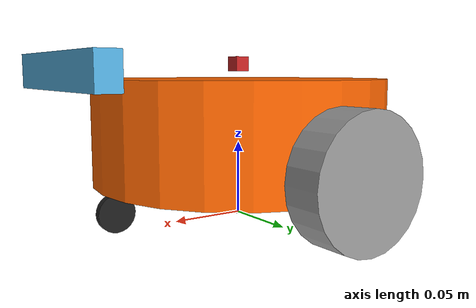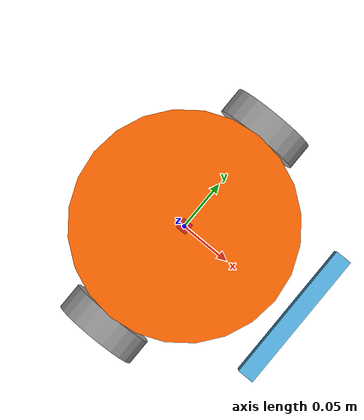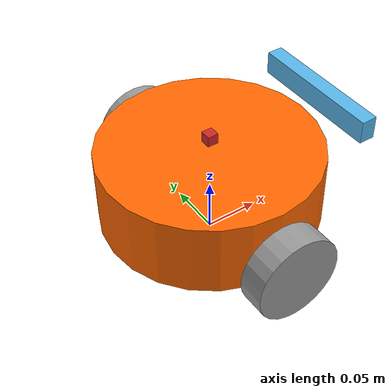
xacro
<?xml version="1.0"?>
<robot name="myrobot_diff_bot"
    xmlns:xacro="http://ros.org/wiki/xacro">

    <!-- PROPERTY LIST -->

    <!-- base_link的质量、半径、高度 -->
    <xacro:property name="base_mass"   value="1" />
    <xacro:property name="base_radius"  value="0.1"/>
    <xacro:property name="base_height" value="0.07"/>

    <!-- 万向轮半径、轮子宽度、x轴偏移 -->
    <xacro:property name="caster_mass"    value="0.2" />
    <xacro:property name="caster_radius"  value="0.012"/>
    <xacro:property name="caster_length"    value="0.005" />
    <xacro:property name="caster_joint_x" value="${base_radius-0.02}"/>

    <!-- 运动轮质量、半径、宽度、x轴偏移、z相对于base_link的偏移 -->
    <xacro:property name="wheel_mass"   value="0.2" />
    <xacro:property name="wheel_radius" value="0.04"/>
    <xacro:property name="wheel_length" value="0.025"/>
    <xacro:property name="wheel_joint_x" value="0.0"/>
    <xacro:property name="wheel_joint_z" value="${caster_radius*2+base_height/2-wheel_radius}"/>

    <!-- Defining the colors used in this robot -->
    <material name="yellow">
        <color rgba="1 0.4 0 1"/>
    </material>
    <material name="black">
        <color rgba="0 0 0 0.95"/>
    </material>
    <material name="gray">
        <color rgba="0.75 0.75 0.75 1"/>
    </material>

    <!-- Macro for inertia matrix -->
    <xacro:macro name="sphere_inertial_matrix" params="m r">
        <inertial>
            <mass value="${m}"/>
            <inertia ixx="${2*m*r*r/5}" ixy="0" ixz="0" iyy="${2*m*r*r/5}" iyz="0" izz="${2*m*r*r/5}"/>
        </inertial>
    </xacro:macro>

    <xacro:macro name="cylinder_inertial_matrix" params="m r h">
        <inertial>
            <mass value="${m}" />
            <inertia ixx="${m*(3*r*r+h*h)/12}" ixy = "0" ixz = "0" iyy="${m*(3*r*r+h*h)/12}" iyz = "0" izz="${m*r*r/2}" />
        </inertial>
    </xacro:macro>

    <xacro:macro name="box_inertial_matrix" params="m l w h">
        <inertial>
             <mass value="${m}" />
             <inertia ixx="${m*(h*h + l*l)/12}" ixy = "0" ixz = "0" iyy="${m*(w*w + l*l)/12}" iyz= "0" izz="${m*(w*w + h*h)/12}" />
        </inertial>
    </xacro:macro>

    <!-- Robot Footprint -->
    <link name="base_footprint">
        <xacro:box_inertial_matrix m="0" l="0" w="0" h="0"/>
    </link>

    <!-- Robot Base -->
    <link name="base_link">
        <visual>
            <origin xyz=" 0 0 0" rpy="0 0 0" />
            <geometry>
                <cylinder radius="${base_radius}" length = "${base_height}"/>
            </geometry>
            <material name="yellow" />
        </visual>
        <collision>
            <origin xyz=" 0 0 0" rpy="0 0 0" />
            <geometry>
                <cylinder radius="${base_radius}" length = "${base_height}"/>
            </geometry>
        </collision>
        <xacro:cylinder_inertial_matrix  m="${base_mass}" r="${base_radius}" h="${base_height}" />
    </link>

    <gazebo reference="base_link">
        <material>Gazebo/Yellow</material>
    </gazebo>

    <joint name="base_footprint_joint" type="fixed">
        <origin xyz="0 0 ${base_height/2 + caster_radius*2}" rpy="0 0 0" />
        <parent link="base_footprint"/>
        <child link="base_link" />
    </joint>

    <!-- 运动轮的宏 -->
    <xacro:macro name="wheel" params="prefix reflect">
        <link name="${prefix}_wheel_link">
            <visual>
                <origin xyz="0 0 0" rpy="${pi/2} 0 0" />
                <geometry>
                    <cylinder radius="${wheel_radius}" length = "${wheel_length}"/>
                </geometry>
            </visual>
            <collision>
                <origin xyz="0 0 0" rpy="${pi/2} 0 0" />
                <geometry>
                    <cylinder radius="${wheel_radius}" length = "${wheel_length}"/>
                </geometry>
            </collision>
            <xacro:cylinder_inertial_matrix  m="${wheel_mass}" r="${wheel_radius}" h="${wheel_length}" />
        </link>

        <gazebo reference="${prefix}_wheel_link">
            <material>Gazebo/Gray</material>
            <mu1>100.0</mu1>
            <mu2>100.0</mu2>
        </gazebo>

        <joint name="${prefix}_wheel_joint" type="continuous">
            <origin xyz="${wheel_joint_x} ${reflect*(base_radius+wheel_length/2)} ${-wheel_joint_z}" rpy="0 0 0"/>
            <parent link="base_link"/>
            <child link="${prefix}_wheel_link"/>
            <axis xyz="0 1 0"/>
        </joint>

        <transmission name="${prefix}_wheel_joint_trans">
            <type>transmission_interface/SimpleTransmission</type>
            <joint name="${prefix}_wheel_joint" >
                <hardwareInterface>hardware_interface/VelocityJointInterface</hardwareInterface>
            </joint>
            <actuator name="${prefix}_wheel_joint_motor">
                <hardwareInterface>hardware_interface/VelocityJointInterface</hardwareInterface>
                <mechanicalReduction>1</mechanicalReduction>
            </actuator>
        </transmission>

    </xacro:macro>

    <xacro:wheel prefix="left"  reflect="1"/>
    <xacro:wheel prefix="right" reflect="-1"/>

    <!-- 万向轮定义 -->
    <xacro:macro name="caster" params="prefix reflect">

        <link name="${prefix}_top_link">
            <visual>
                <origin xyz="0 0 0" rpy="0 0 0"/>
                <geometry>
                    <cylinder radius="${caster_radius}" length = "${caster_length/20}" />
                </geometry>
                <material name="black" />
            </visual>
            <collision>
                <origin xyz="0 0 0" rpy="0 0 0"/>
                <geometry>
                    <cylinder radius="${caster_radius}" length = "${caster_length/20}" />
                </geometry>
            </collision>
            <xacro:cylinder_inertial_matrix  m="${caster_mass/20}" r="${caster_radius}" h="${caster_length/20}" />
        </link>

        <link name="${prefix}_caster_link">
            <visual>
                <origin xyz="0 0 0" rpy="${pi/2} 0 0"/>
                <geometry>
                    <cylinder radius="${caster_radius}" length = "${caster_length}" />
                </geometry>
            </visual>
            <collision>
                <origin xyz="0 0 0" rpy="${pi/2} 0 0"/>
                <geometry>
                    <cylinder radius="${caster_radius}" length = "${caster_length}" />
                </geometry>
            </collision>
            <xacro:cylinder_inertial_matrix  m="${caster_mass}" r="${caster_radius}" h="${caster_length}" />
        </link>

        <gazebo reference="${prefix}_caster_link">
            <material>Gazebo/Black</material>
        </gazebo>

        <joint name="${prefix}_top_caster_joint" type="continuous">
            <origin xyz="${reflect*caster_joint_x} 0 ${-(base_height/2)}" rpy="0 0 0"/>
            <parent link="base_link"/>
            <child link="${prefix}_top_link"/>
            <axis xyz="0 0 1"/>
        </joint>

        <joint name="${prefix}_caster_joint" type="continuous">
            <origin xyz="${caster_radius} 0 ${ -caster_radius}" rpy="0 0 0"/>
            <parent link="${prefix}_top_link"/>
            <child link="${prefix}_caster_link"/>
            <axis xyz="0 1 0"/>
        </joint>
    </xacro:macro>

    <!-- 添加两个万向轮 -->
    <xacro:caster prefix="back"  reflect="-1"/>
    <xacro:caster prefix="front"  reflect="1"/>

    <!-- 添加差速控制器 -->
    <gazebo>
        <plugin name='diff_drive' filename='libgazebo_ros_diff_drive.so'>

            <update_rate>30</update_rate>
            <!-- wheels -->
            <left_joint>left_wheel_joint</left_joint>
            <right_joint>right_wheel_joint</right_joint>

            <!-- kinematics -->
            <wheel_separation>${base_radius*2+wheel_length}</wheel_separation>
            <wheel_diameter>${2*wheel_radius}</wheel_diameter>

            <command_topic>cmd_vel</command_topic>

            <!-- limits -->
            <max_wheel_torque>20</max_wheel_torque>
            <max_wheel_acceleration>1.0</max_wheel_acceleration>

            <!-- output -->
            <publish_odom>true</publish_odom>
            <publish_odom_tf>true</publish_odom_tf>
            <publish_wheel_tf>true</publish_wheel_tf>

            <odometry_frame>odom</odometry_frame>
            <robot_base_frame>base_footprint</robot_base_frame>
        </plugin>
    </gazebo>

    <!-- 添加雷达 -->
    <xacro:property name="lidar_offset_x" value="0.08" />
    <xacro:property name="lidar_offset_y" value="0" />
    <xacro:property name="lidar_offset_z" value="${base_height/2+0.01}" />

    <!-- 添加imu -->
    <link name="imu_link">
        <visual>
        <geometry>
            <box size="0.01 0.01 0.01"/>
        </geometry>
        </visual>

        <collision>
        <geometry>
            <box size="0.01 0.01 0.01"/>
        </geometry>
        </collision>

        <xacro:box_inertial_matrix m="0.05" l="0.01" w="0.01" h="0.01"/>
    </link>

    <gazebo reference="imu_link">
        <material>Gazebo/Red</material>
    </gazebo>

    <joint name="imu_joint" type="fixed">
        <parent link="base_link"/>
        <child link="imu_link"/>
        <origin xyz="0 0 ${lidar_offset_z}"/>
    </joint>

    <gazebo reference="imu_link">
        <sensor name="imu_sensor" type="imu">

            <always_on>true</always_on>
            <update_rate>10</update_rate>
            <visualize>true</visualize>
            <imu>
                <angular_velocity>
                <x>
                    <noise type="gaussian">
                    <mean>0.0</mean>
                    <stddev>2e-4</stddev>
                    <bias_mean>0.0000075</bias_mean>
                    <bias_stddev>0.0000008</bias_stddev>
                    </noise>
                </x>
                <y>
                    <noise type="gaussian">
                    <mean>0.0</mean>
                    <stddev>2e-4</stddev>
                    <bias_mean>0.0000075</bias_mean>
                    <bias_stddev>0.0000008</bias_stddev>
                    </noise>
                </y>
                <z>
                    <noise type="gaussian">
                    <mean>0.0</mean>
                    <stddev>2e-4</stddev>
                    <bias_mean>0.0000075</bias_mean>
                    <bias_stddev>0.0000008</bias_stddev>
                    </noise>
                </z>
                </angular_velocity>
                <linear_acceleration>
                <x>
                    <noise type="gaussian">
                    <mean>0.0</mean>
                    <stddev>1.7e-2</stddev>
                    <bias_mean>0.1</bias_mean>
                    <bias_stddev>0.001</bias_stddev>
                    </noise>
                </x>
                <y>
                    <noise type="gaussian">
                    <mean>0.0</mean>
                    <stddev>1.7e-2</stddev>
                    <bias_mean>0.1</bias_mean>
                    <bias_stddev>0.001</bias_stddev>
                    </noise>
                </y>
                <z>
                    <noise type="gaussian">
                    <mean>0.0</mean>
                    <stddev>1.7e-2</stddev>
                    <bias_mean>0.1</bias_mean>
                    <bias_stddev>0.001</bias_stddev>
                    </noise>
                </z>
                </linear_acceleration>
            </imu>
            <plugin filename="libgazebo_ros_imu_sensor.so" name="imu_plugin">
                <ros>
                    <remapping>~/out:=imu/data_raw</remapping>
                </ros>
                <frame_name>imu_link</frame_name>
                <initial_orientation_as_reference>false</initial_orientation_as_reference>
            </plugin>
        </sensor>
    </gazebo>

    <!-- 添加RGBD相机 -->
    <xacro:property name="camera_offset_x" value="${base_radius+0.02}" />
    <xacro:property name="camera_offset_y" value="0" />
    <xacro:property name="camera_offset_z" value="0.04" />

    <link name="camera_link">
        <visual>
        <origin xyz="0 0 0" rpy="0 0 0"/>
        <geometry>
            <box size="0.015 0.130 0.022"/>
        </geometry>
        </visual>

        <collision>
        <origin xyz="0 0 0" rpy="0 0 0"/>
        <geometry>
            <box size="0.015 0.130 0.022"/>
        </geometry>
        </collision>

        <inertial>
            <origin xyz="0 0 0" rpy="0 0 0"/>
            <mass value="0.035"/>
            <inertia ixx="0.001" ixy="0" ixz="0" iyy="0.001" iyz="0" izz="0.001" />
        </inertial>
    </link>

    <joint name="camera_joint" type="fixed">
        <parent link="base_link"/>
        <child link="camera_link"/>
        <origin xyz="${camera_offset_x} 0 ${camera_offset_z}" rpy="0 0 0"/>
    </joint>

    <link name="camera_depth_frame"/>

    <joint name="camera_depth_joint" type="fixed">
        <origin xyz="0 0 0" rpy="${-pi/2} 0 ${-pi/2}"/>
        <parent link="camera_link"/>
        <child link="camera_depth_frame"/>
    </joint>

    <gazebo reference="camera_link">
        <!-- 这里的camera 决定话题名 /camera/depth/camera_info -->
        <sensor name="camera" type="depth">
            <visualize>true</visualize>
            <update_rate>30.0</update_rate>
            <camera name="camera">
                <horizontal_fov>1.047198</horizontal_fov>
                <image>
                    <width>640</width>
                    <height>480</height>
                    <format>R8G8B8</format>
                </image>
                <clip>
                    <near>0.05</near>
                    <far>4</far>
                </clip>
            </camera>
            <plugin name="depth_camera_controller" filename="libgazebo_ros_camera.so">
                <baseline>0.2</baseline>
                <alwaysOn>true</alwaysOn>
                <updateRate>10.0</updateRate>
                <frame_name>camera_depth_frame</frame_name>
            </plugin>
        </sensor>
    </gazebo>

</robot>
